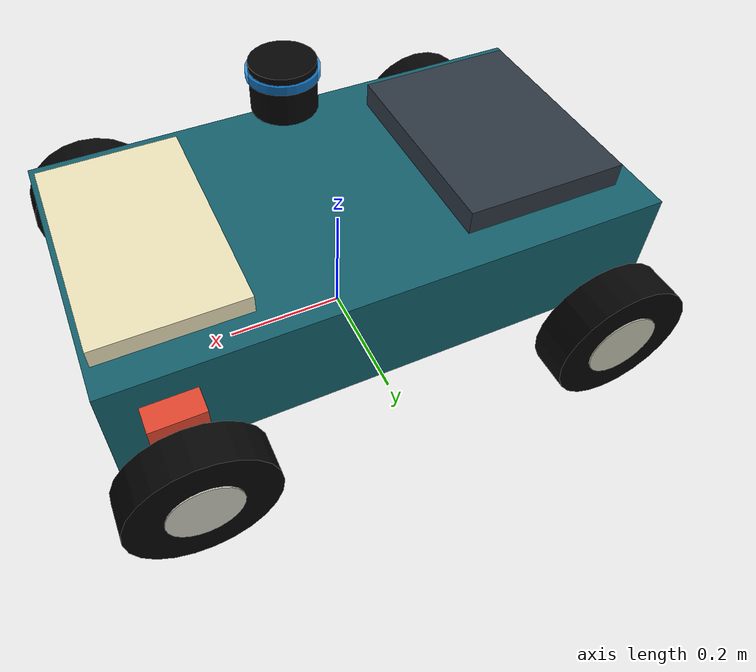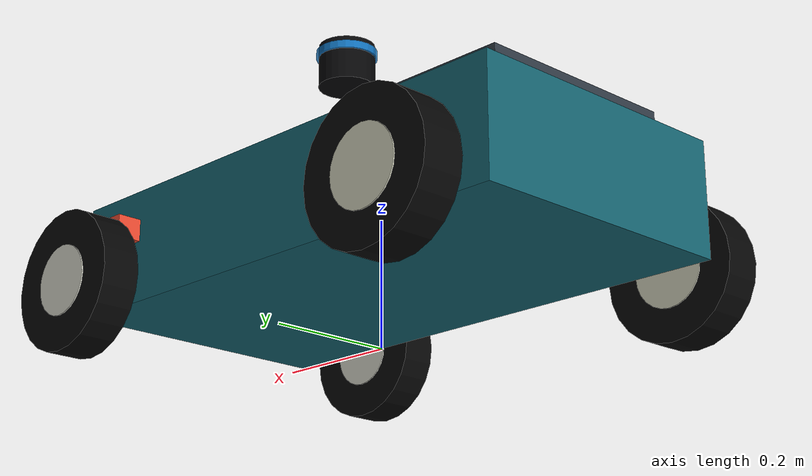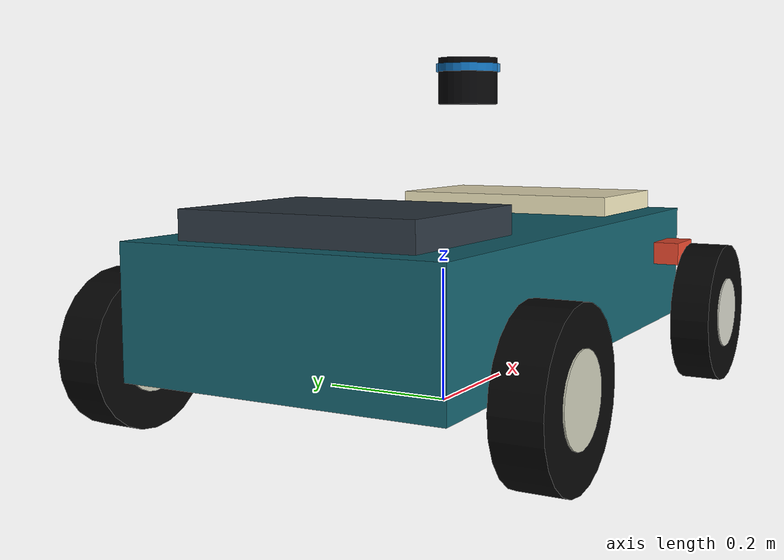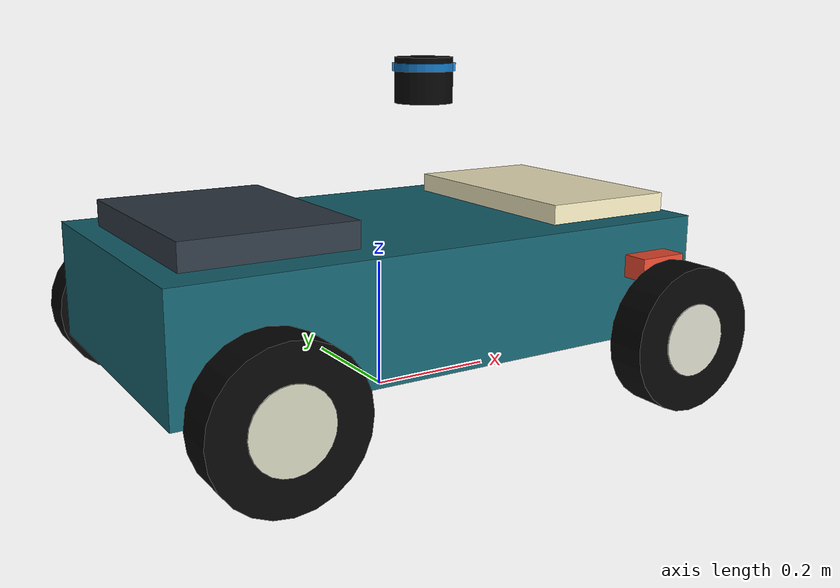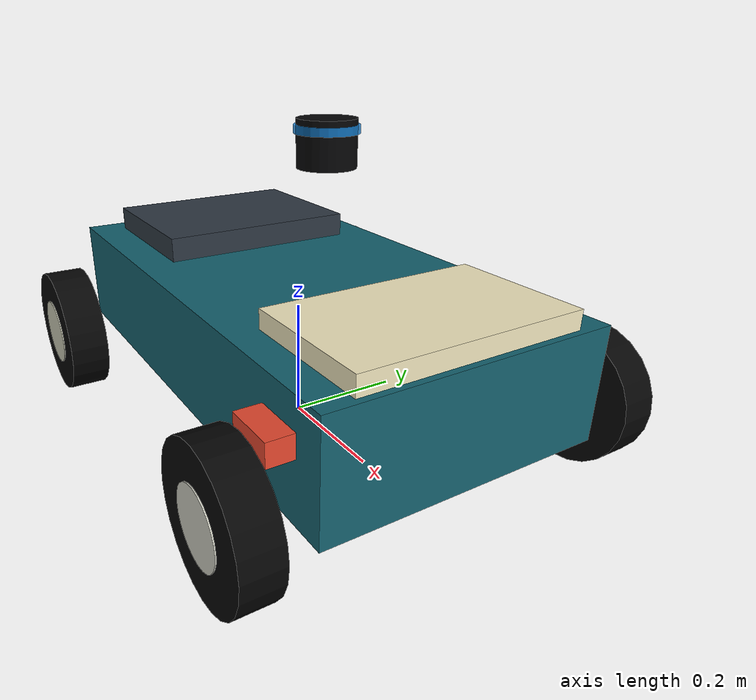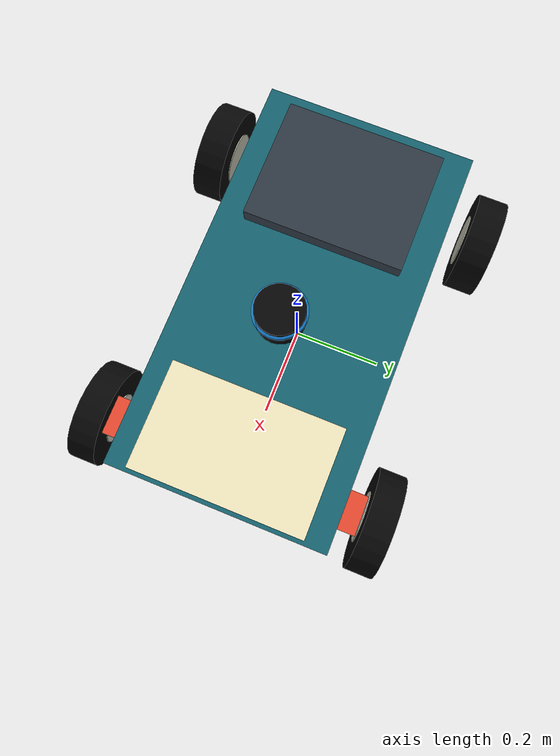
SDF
<?xml version="1.0"?>
<sdf version="1.6">
  <model name="version_car">
    <pose>0 0 0 0 0 0</pose>

    <link name="base_link">
      <pose>0 0 0.18 0 0 0</pose>
      <inertial>
        <mass>8.0</mass>
        <inertia>
          <ixx>0.24</ixx>
          <ixy>0.0</ixy>
          <ixz>0.0</ixz>
          <iyy>0.36</iyy>
          <iyz>0.0</iyz>
          <izz>0.50</izz>
        </inertia>
      </inertial>

      <collision name="base_collision">
        <geometry>
          <box>
            <size>0.86 0.46 0.18</size>
          </box>
        </geometry>
      </collision>
      <visual name="base_visual">
        <geometry>
          <box>
            <size>0.86 0.46 0.18</size>
          </box>
        </geometry>
        <material>
          <ambient>0.05 0.18 0.22 1</ambient>
          <diffuse>0.08 0.38 0.43 1</diffuse>
        </material>
      </visual>

      <visual name="front_nose_visual">
        <pose>0.31 0 0.08 0 0 0</pose>
        <geometry>
          <box>
            <size>0.22 0.36 0.08</size>
          </box>
        </geometry>
        <material>
          <ambient>0.90 0.88 0.76 1</ambient>
          <diffuse>0.94 0.90 0.74 1</diffuse>
        </material>
      </visual>

      <visual name="rear_drive_cover_visual">
        <pose>-0.26 0 0.09 0 0 0</pose>
        <geometry>
          <box>
            <size>0.26 0.34 0.08</size>
          </box>
        </geometry>
        <material>
          <ambient>0.14 0.17 0.20 1</ambient>
          <diffuse>0.18 0.22 0.26 1</diffuse>
        </material>
      </visual>
    </link>

    <link name="front_steering_link">
      <pose>0.34 0 0.205 0 0 0</pose>
      <inertial>
        <mass>0.20</mass>
        <inertia>
          <ixx>0.0008</ixx>
          <ixy>0.0</ixy>
          <ixz>0.0</ixz>
          <iyy>0.0004</iyy>
          <iyz>0.0</iyz>
          <izz>0.0008</izz>
        </inertia>
      </inertial>
      <visual name="steering_bar_visual">
        <geometry>
          <box>
            <size>0.08 0.54 0.035</size>
          </box>
        </geometry>
        <material>
          <ambient>0.85 0.26 0.18 1</ambient>
          <diffuse>0.90 0.28 0.18 1</diffuse>
        </material>
      </visual>
    </link>

    <link name="front_left_wheel">
      <pose>0.34 0.31 0.11 0 0 1.57079632679</pose>
      <inertial>
        <mass>0.55</mass>
        <inertia>
          <ixx>0.0025</ixx>
          <ixy>0.0</ixy>
          <ixz>0.0</ixz>
          <iyy>0.0038</iyy>
          <iyz>0.0</iyz>
          <izz>0.0025</izz>
        </inertia>
      </inertial>
      <visual name="tire_visual">
        <pose>0 0 0 0 1.57079632679 0</pose>
        <geometry>
          <cylinder>
            <radius>0.11</radius>
            <length>0.06</length>
          </cylinder>
        </geometry>
        <material>
          <ambient>0.02 0.02 0.02 1</ambient>
          <diffuse>0.02 0.02 0.02 1</diffuse>
        </material>
      </visual>
      <visual name="hub_visual">
        <pose>0 0 0 0 1.57079632679 0</pose>
        <geometry>
          <cylinder>
            <radius>0.055</radius>
            <length>0.064</length>
          </cylinder>
        </geometry>
        <material>
          <ambient>0.72 0.72 0.68 1</ambient>
          <diffuse>0.80 0.80 0.75 1</diffuse>
        </material>
      </visual>
      <collision name="collision">
        <geometry>
          <sphere>
            <radius>0.11</radius>
          </sphere>
        </geometry>
        <surface>
          <friction>
            <ode>
              <mu>1.0</mu>
              <mu2>1.0</mu2>
              <slip1>0.0</slip1>
              <slip2>0.0</slip2>
            </ode>
          </friction>
          <contact>
            <ode>
              <kp>1e+9</kp>
              <kd>1.0</kd>
              <min_depth>0.001</min_depth>
            </ode>
          </contact>
        </surface>
      </collision>
    </link>

    <link name="front_right_wheel">
      <pose>0.34 -0.31 0.11 0 0 1.57079632679</pose>
      <inertial>
        <mass>0.55</mass>
        <inertia>
          <ixx>0.0025</ixx>
          <ixy>0.0</ixy>
          <ixz>0.0</ixz>
          <iyy>0.0038</iyy>
          <iyz>0.0</iyz>
          <izz>0.0025</izz>
        </inertia>
      </inertial>
      <visual name="tire_visual">
        <pose>0 0 0 0 1.57079632679 0</pose>
        <geometry>
          <cylinder>
            <radius>0.11</radius>
            <length>0.06</length>
          </cylinder>
        </geometry>
        <material>
          <ambient>0.02 0.02 0.02 1</ambient>
          <diffuse>0.02 0.02 0.02 1</diffuse>
        </material>
      </visual>
      <visual name="hub_visual">
        <pose>0 0 0 0 1.57079632679 0</pose>
        <geometry>
          <cylinder>
            <radius>0.055</radius>
            <length>0.064</length>
          </cylinder>
        </geometry>
        <material>
          <ambient>0.72 0.72 0.68 1</ambient>
          <diffuse>0.80 0.80 0.75 1</diffuse>
        </material>
      </visual>
      <collision name="collision">
        <geometry>
          <sphere>
            <radius>0.11</radius>
          </sphere>
        </geometry>
        <surface>
          <friction>
            <ode>
              <mu>1.0</mu>
              <mu2>1.0</mu2>
              <slip1>0.0</slip1>
              <slip2>0.0</slip2>
            </ode>
          </friction>
          <contact>
            <ode>
              <kp>1e+9</kp>
              <kd>1.0</kd>
              <min_depth>0.001</min_depth>
            </ode>
          </contact>
        </surface>
      </collision>
    </link>

    <link name="rear_left_wheel">
      <pose>-0.32 0.31 0.11 0 0 1.57079632679</pose>
      <inertial>
        <mass>0.65</mass>
        <inertia>
          <ixx>0.0030</ixx>
          <ixy>0.0</ixy>
          <ixz>0.0</ixz>
          <iyy>0.0045</iyy>
          <iyz>0.0</iyz>
          <izz>0.0030</izz>
        </inertia>
      </inertial>
      <visual name="tire_visual">
        <pose>0 0 0 0 1.57079632679 0</pose>
        <geometry>
          <cylinder>
            <radius>0.11</radius>
            <length>0.065</length>
          </cylinder>
        </geometry>
        <material>
          <ambient>0.02 0.02 0.02 1</ambient>
          <diffuse>0.02 0.02 0.02 1</diffuse>
        </material>
      </visual>
      <visual name="hub_visual">
        <pose>0 0 0 0 1.57079632679 0</pose>
        <geometry>
          <cylinder>
            <radius>0.058</radius>
            <length>0.069</length>
          </cylinder>
        </geometry>
        <material>
          <ambient>0.68 0.68 0.62 1</ambient>
          <diffuse>0.78 0.78 0.70 1</diffuse>
        </material>
      </visual>
      <collision name="collision">
        <geometry>
          <sphere>
            <radius>0.11</radius>
          </sphere>
        </geometry>
        <surface>
          <friction>
            <ode>
              <mu>1.3</mu>
              <mu2>1.3</mu2>
              <slip1>0.0</slip1>
              <slip2>0.0</slip2>
            </ode>
          </friction>
          <contact>
            <ode>
              <kp>1e+9</kp>
              <kd>1.0</kd>
              <min_depth>0.001</min_depth>
            </ode>
          </contact>
        </surface>
      </collision>
    </link>

    <link name="rear_right_wheel">
      <pose>-0.32 -0.31 0.11 0 0 1.57079632679</pose>
      <inertial>
        <mass>0.65</mass>
        <inertia>
          <ixx>0.0030</ixx>
          <ixy>0.0</ixy>
          <ixz>0.0</ixz>
          <iyy>0.0045</iyy>
          <iyz>0.0</iyz>
          <izz>0.0030</izz>
        </inertia>
      </inertial>
      <visual name="tire_visual">
        <pose>0 0 0 0 1.57079632679 0</pose>
        <geometry>
          <cylinder>
            <radius>0.11</radius>
            <length>0.065</length>
          </cylinder>
        </geometry>
        <material>
          <ambient>0.02 0.02 0.02 1</ambient>
          <diffuse>0.02 0.02 0.02 1</diffuse>
        </material>
      </visual>
      <visual name="hub_visual">
        <pose>0 0 0 0 1.57079632679 0</pose>
        <geometry>
          <cylinder>
            <radius>0.058</radius>
            <length>0.069</length>
          </cylinder>
        </geometry>
        <material>
          <ambient>0.68 0.68 0.62 1</ambient>
          <diffuse>0.78 0.78 0.70 1</diffuse>
        </material>
      </visual>
      <collision name="collision">
        <geometry>
          <sphere>
            <radius>0.11</radius>
          </sphere>
        </geometry>
        <surface>
          <friction>
            <ode>
              <mu>1.3</mu>
              <mu2>1.3</mu2>
              <slip1>0.0</slip1>
              <slip2>0.0</slip2>
            </ode>
          </friction>
          <contact>
            <ode>
              <kp>1e+9</kp>
              <kd>1.0</kd>
              <min_depth>0.001</min_depth>
            </ode>
          </contact>
        </surface>
      </collision>
    </link>

    <link name="mid360_link">
      <pose>0.08 0 0.48 0 0 0</pose>
      <inertial>
        <mass>0.28</mass>
        <inertia>
          <ixx>0.00045</ixx>
          <ixy>0.0</ixy>
          <ixz>0.0</ixz>
          <iyy>0.00045</iyy>
          <iyz>0.0</iyz>
          <izz>0.0006</izz>
        </inertia>
      </inertial>
      <collision name="lidar_collision">
        <geometry>
          <cylinder>
            <radius>0.045</radius>
            <length>0.07</length>
          </cylinder>
        </geometry>
      </collision>
      <visual name="lidar_visual">
        <geometry>
          <cylinder>
            <radius>0.045</radius>
            <length>0.07</length>
          </cylinder>
        </geometry>
        <material>
          <ambient>0.02 0.02 0.025 1</ambient>
          <diffuse>0.02 0.02 0.025 1</diffuse>
        </material>
      </visual>
      <visual name="lidar_window_visual">
        <pose>0 0 0.02 0 0 0</pose>
        <geometry>
          <cylinder>
            <radius>0.049</radius>
            <length>0.012</length>
          </cylinder>
        </geometry>
        <material>
          <ambient>0.10 0.45 0.72 0.85</ambient>
          <diffuse>0.12 0.55 0.88 0.85</diffuse>
        </material>
      </visual>

      <sensor name="mid360_livox3d" type="ray">
        <pose>0 0 0 0 0 0</pose>
        <visualize>true</visualize>
        <always_on>true</always_on>
        <update_rate>10</update_rate>
        <ray>
          <scan>
            <horizontal>
              <samples>720</samples>
              <resolution>1.0</resolution>
              <min_angle>-3.14159265</min_angle>
              <max_angle>3.14159265</max_angle>
            </horizontal>
            <vertical>
              <samples>32</samples>
              <resolution>1.0</resolution>
              <min_angle>-0.43633231</min_angle>
              <max_angle>0.43633231</max_angle>
            </vertical>
          </scan>
          <range>
            <min>0.10</min>
            <max>35.0</max>
            <resolution>0.02</resolution>
          </range>
          <noise>
            <type>gaussian</type>
            <mean>0.0</mean>
            <stddev>0.015</stddev>
          </noise>
        </ray>
        <plugin name="mid360_laserscan" filename="libgazebo_ros_ray_sensor.so">
          <ros>
            <remapping>~/out:=scan</remapping>
          </ros>
          <output_type>sensor_msgs/LaserScan</output_type>
          <frame_name>mid360_link</frame_name>
        </plugin>
        <plugin name="mid360_points" filename="libgazebo_ros_ray_sensor.so">
          <ros>
            <remapping>~/out:=mid360_points</remapping>
          </ros>
          <output_type>sensor_msgs/PointCloud2</output_type>
          <frame_name>mid360_link</frame_name>
        </plugin>
      </sensor>
      <sensor name="mid360_imu" type="imu">
        <pose>0 0 0 0 0 0</pose>
        <always_on>true</always_on>
        <visualize>false</visualize>
        <update_rate>100</update_rate>
        <imu>
          <angular_velocity>
            <x>
              <noise type="gaussian">
                <mean>0.0</mean>
                <stddev>0.0005</stddev>
              </noise>
            </x>
            <y>
              <noise type="gaussian">
                <mean>0.0</mean>
                <stddev>0.0005</stddev>
              </noise>
            </y>
            <z>
              <noise type="gaussian">
                <mean>0.0</mean>
                <stddev>0.0005</stddev>
              </noise>
            </z>
          </angular_velocity>
          <linear_acceleration>
            <x>
              <noise type="gaussian">
                <mean>0.0</mean>
                <stddev>0.01</stddev>
              </noise>
            </x>
            <y>
              <noise type="gaussian">
                <mean>0.0</mean>
                <stddev>0.01</stddev>
              </noise>
            </y>
            <z>
              <noise type="gaussian">
                <mean>0.0</mean>
                <stddev>0.01</stddev>
              </noise>
            </z>
          </linear_acceleration>
        </imu>
        <plugin name="mid360_imu_plugin" filename="libgazebo_ros_imu_sensor.so">
          <ros>
            <remapping>~/out:=imu</remapping>
          </ros>
          <frame_name>mid360_link</frame_name>
        </plugin>
      </sensor>
    </link>

    <joint name="front_steering_joint" type="revolute">
      <parent>base_link</parent>
      <child>front_steering_link</child>
      <axis>
        <xyz>0 0 1</xyz>
        <limit>
          <lower>-0.70</lower>
          <upper>0.70</upper>
        </limit>
        <dynamics>
          <damping>0.8</damping>
        </dynamics>
      </axis>
    </joint>

    <joint name="front_left_wheel_joint" type="universal">
      <parent>base_link</parent>
      <child>front_left_wheel</child>
      <axis>
        <xyz>0 0 1</xyz>
        <limit>
          <lower>-0.70</lower>
          <upper>0.70</upper>
        </limit>
        <dynamics>
          <damping>0.4</damping>
        </dynamics>
      </axis>
      <axis2>
        <xyz>1 0 0</xyz>
        <dynamics>
          <friction>0.20</friction>
        </dynamics>
      </axis2>
    </joint>

    <joint name="front_right_wheel_joint" type="universal">
      <parent>base_link</parent>
      <child>front_right_wheel</child>
      <axis>
        <xyz>0 0 1</xyz>
        <limit>
          <lower>-0.70</lower>
          <upper>0.70</upper>
        </limit>
        <dynamics>
          <damping>0.4</damping>
        </dynamics>
      </axis>
      <axis2>
        <xyz>1 0 0</xyz>
        <dynamics>
          <friction>0.20</friction>
        </dynamics>
      </axis2>
    </joint>

    <joint name="rear_left_wheel_joint" type="revolute">
      <parent>base_link</parent>
      <child>rear_left_wheel</child>
      <axis>
        <xyz>1 0 0</xyz>
        <limit>
          <lower>-1.79769e+308</lower>
          <upper>1.79769e+308</upper>
        </limit>
        <dynamics>
          <friction>0.15</friction>
        </dynamics>
      </axis>
    </joint>

    <joint name="rear_right_wheel_joint" type="revolute">
      <parent>base_link</parent>
      <child>rear_right_wheel</child>
      <axis>
        <xyz>1 0 0</xyz>
        <limit>
          <lower>-1.79769e+308</lower>
          <upper>1.79769e+308</upper>
        </limit>
        <dynamics>
          <friction>0.15</friction>
        </dynamics>
      </axis>
    </joint>

    <joint name="mid360_fixed_joint" type="fixed">
      <parent>base_link</parent>
      <child>mid360_link</child>
    </joint>

    <plugin name="planar_move" filename="libgazebo_ros_planar_move.so">
      <ros>
        <remapping>cmd_vel:=cmd_vel</remapping>
        <remapping>odom:=odom</remapping>
      </ros>
      <update_rate>100.0</update_rate>
      <publish_rate>30.0</publish_rate>

      <publish_odom>true</publish_odom>
      <publish_odom_tf>true</publish_odom_tf>

      <odometry_frame>odom</odometry_frame>
      <robot_base_frame>base_link</robot_base_frame>

      <covariance_x>0.0001</covariance_x>
      <covariance_y>0.0001</covariance_y>
      <covariance_yaw>0.01</covariance_yaw>
    </plugin>
  </model>
</sdf>
